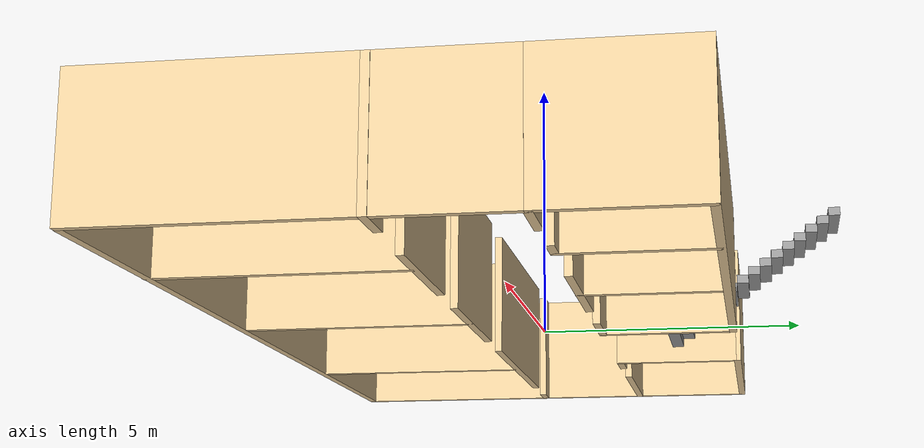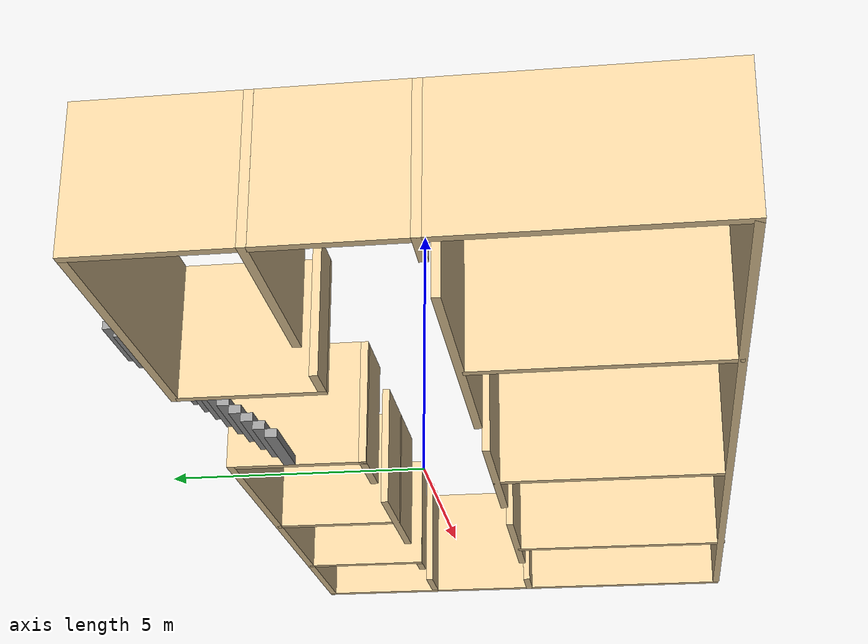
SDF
<?xml version='1.0'?>
<sdf version='1.7'>
  <model name='neworld'>
    <pose>-0.053654 -0.040886 0 0 -0 0</pose>
    <link name='Stairs_0'>
      <visual name='Stairs_0_Visual_0'>
        <pose>-1.36439 2.57287 0.083333 0 -0 -3.14159</pose>
        <geometry>
          <box>
            <size>1.63239 0.233333 0.166667</size>
          </box>
        </geometry>
        <material>
          <script>
            <uri>file://media/materials/scripts/gazebo.material</uri>
            <name>Gazebo/Grey</name>
          </script>
          <ambient>1 1 1 1</ambient>
        </material>
        <meta>
          <layer>0</layer>
        </meta>
      </visual>
      <collision name='Stairs_0_Collision_0'>
        <geometry>
          <box>
            <size>1.63239 0.233333 0.166667</size>
          </box>
        </geometry>
        <pose>-1.36439 2.57287 0.083333 0 -0 -3.14159</pose>
      </collision>
      <visual name='Stairs_0_Visual_1'>
        <pose>-1.36439 2.80621 0.25 0 -0 -3.14159</pose>
        <geometry>
          <box>
            <size>1.63239 0.233333 0.166667</size>
          </box>
        </geometry>
        <material>
          <script>
            <uri>file://media/materials/scripts/gazebo.material</uri>
            <name>Gazebo/Grey</name>
          </script>
          <ambient>1 1 1 1</ambient>
        </material>
        <meta>
          <layer>0</layer>
        </meta>
      </visual>
      <collision name='Stairs_0_Collision_1'>
        <geometry>
          <box>
            <size>1.63239 0.233333 0.166667</size>
          </box>
        </geometry>
        <pose>-1.36439 2.80621 0.25 0 -0 -3.14159</pose>
      </collision>
      <visual name='Stairs_0_Visual_2'>
        <pose>-1.36439 3.03954 0.416667 0 -0 -3.14159</pose>
        <geometry>
          <box>
            <size>1.63239 0.233333 0.166667</size>
          </box>
        </geometry>
        <material>
          <script>
            <uri>file://media/materials/scripts/gazebo.material</uri>
            <name>Gazebo/Grey</name>
          </script>
          <ambient>1 1 1 1</ambient>
        </material>
        <meta>
          <layer>0</layer>
        </meta>
      </visual>
      <collision name='Stairs_0_Collision_2'>
        <geometry>
          <box>
            <size>1.63239 0.233333 0.166667</size>
          </box>
        </geometry>
        <pose>-1.36439 3.03954 0.416667 0 -0 -3.14159</pose>
      </collision>
      <visual name='Stairs_0_Visual_3'>
        <pose>-1.36439 3.27287 0.583333 0 -0 -3.14159</pose>
        <geometry>
          <box>
            <size>1.63239 0.233333 0.166667</size>
          </box>
        </geometry>
        <material>
          <script>
            <uri>file://media/materials/scripts/gazebo.material</uri>
            <name>Gazebo/Grey</name>
          </script>
          <ambient>1 1 1 1</ambient>
        </material>
        <meta>
          <layer>0</layer>
        </meta>
      </visual>
      <collision name='Stairs_0_Collision_3'>
        <geometry>
          <box>
            <size>1.63239 0.233333 0.166667</size>
          </box>
        </geometry>
        <pose>-1.36439 3.27287 0.583333 0 -0 -3.14159</pose>
      </collision>
      <visual name='Stairs_0_Visual_4'>
        <pose>-1.36439 3.50621 0.75 0 -0 -3.14159</pose>
        <geometry>
          <box>
            <size>1.63239 0.233333 0.166667</size>
          </box>
        </geometry>
        <material>
          <script>
            <uri>file://media/materials/scripts/gazebo.material</uri>
            <name>Gazebo/Grey</name>
          </script>
          <ambient>1 1 1 1</ambient>
        </material>
        <meta>
          <layer>0</layer>
        </meta>
      </visual>
      <collision name='Stairs_0_Collision_4'>
        <geometry>
          <box>
            <size>1.63239 0.233333 0.166667</size>
          </box>
        </geometry>
        <pose>-1.36439 3.50621 0.75 0 -0 -3.14159</pose>
      </collision>
      <visual name='Stairs_0_Visual_5'>
        <pose>-1.36439 3.73954 0.916667 0 -0 -3.14159</pose>
        <geometry>
          <box>
            <size>1.63239 0.233333 0.166667</size>
          </box>
        </geometry>
        <material>
          <script>
            <uri>file://media/materials/scripts/gazebo.material</uri>
            <name>Gazebo/Grey</name>
          </script>
          <ambient>1 1 1 1</ambient>
        </material>
        <meta>
          <layer>0</layer>
        </meta>
      </visual>
      <collision name='Stairs_0_Collision_5'>
        <geometry>
          <box>
            <size>1.63239 0.233333 0.166667</size>
          </box>
        </geometry>
        <pose>-1.36439 3.73954 0.916667 0 -0 -3.14159</pose>
      </collision>
      <visual name='Stairs_0_Visual_6'>
        <pose>-1.36439 3.97287 1.08333 0 -0 -3.14159</pose>
        <geometry>
          <box>
            <size>1.63239 0.233333 0.166667</size>
          </box>
        </geometry>
        <material>
          <script>
            <uri>file://media/materials/scripts/gazebo.material</uri>
            <name>Gazebo/Grey</name>
          </script>
          <ambient>1 1 1 1</ambient>
        </material>
        <meta>
          <layer>0</layer>
        </meta>
      </visual>
      <collision name='Stairs_0_Collision_6'>
        <geometry>
          <box>
            <size>1.63239 0.233333 0.166667</size>
          </box>
        </geometry>
        <pose>-1.36439 3.97287 1.08333 0 -0 -3.14159</pose>
      </collision>
      <visual name='Stairs_0_Visual_7'>
        <pose>-1.36439 4.20621 1.25 0 -0 -3.14159</pose>
        <geometry>
          <box>
            <size>1.63239 0.233333 0.166667</size>
          </box>
        </geometry>
        <material>
          <script>
            <uri>file://media/materials/scripts/gazebo.material</uri>
            <name>Gazebo/Grey</name>
          </script>
          <ambient>1 1 1 1</ambient>
        </material>
        <meta>
          <layer>0</layer>
        </meta>
      </visual>
      <collision name='Stairs_0_Collision_7'>
        <geometry>
          <box>
            <size>1.63239 0.233333 0.166667</size>
          </box>
        </geometry>
        <pose>-1.36439 4.20621 1.25 0 -0 -3.14159</pose>
      </collision>
      <visual name='Stairs_0_Visual_8'>
        <pose>-1.36439 4.43954 1.41667 0 -0 -3.14159</pose>
        <geometry>
          <box>
            <size>1.63239 0.233333 0.166667</size>
          </box>
        </geometry>
        <material>
          <script>
            <uri>file://media/materials/scripts/gazebo.material</uri>
            <name>Gazebo/Grey</name>
          </script>
          <ambient>1 1 1 1</ambient>
        </material>
        <meta>
          <layer>0</layer>
        </meta>
      </visual>
      <collision name='Stairs_0_Collision_8'>
        <geometry>
          <box>
            <size>1.63239 0.233333 0.166667</size>
          </box>
        </geometry>
        <pose>-1.36439 4.43954 1.41667 0 -0 -3.14159</pose>
      </collision>
      <visual name='Stairs_0_Visual_9'>
        <pose>-1.36439 4.67287 1.58333 0 -0 -3.14159</pose>
        <geometry>
          <box>
            <size>1.63239 0.233333 0.166667</size>
          </box>
        </geometry>
        <material>
          <script>
            <uri>file://media/materials/scripts/gazebo.material</uri>
            <name>Gazebo/Grey</name>
          </script>
          <ambient>1 1 1 1</ambient>
        </material>
        <meta>
          <layer>0</layer>
        </meta>
      </visual>
      <collision name='Stairs_0_Collision_9'>
        <geometry>
          <box>
            <size>1.63239 0.233333 0.166667</size>
          </box>
        </geometry>
        <pose>-1.36439 4.67287 1.58333 0 -0 -3.14159</pose>
      </collision>
      <visual name='Stairs_0_Visual_10'>
        <pose>-1.36439 4.90621 1.75 0 -0 -3.14159</pose>
        <geometry>
          <box>
            <size>1.63239 0.233333 0.166667</size>
          </box>
        </geometry>
        <material>
          <script>
            <uri>file://media/materials/scripts/gazebo.material</uri>
            <name>Gazebo/Grey</name>
          </script>
          <ambient>1 1 1 1</ambient>
        </material>
        <meta>
          <layer>0</layer>
        </meta>
      </visual>
      <collision name='Stairs_0_Collision_10'>
        <geometry>
          <box>
            <size>1.63239 0.233333 0.166667</size>
          </box>
        </geometry>
        <pose>-1.36439 4.90621 1.75 0 -0 -3.14159</pose>
      </collision>
      <visual name='Stairs_0_Visual_11'>
        <pose>-1.36439 5.13954 1.91667 0 -0 -3.14159</pose>
        <geometry>
          <box>
            <size>1.63239 0.233333 0.166667</size>
          </box>
        </geometry>
        <material>
          <script>
            <uri>file://media/materials/scripts/gazebo.material</uri>
            <name>Gazebo/Grey</name>
          </script>
          <ambient>1 1 1 1</ambient>
        </material>
        <meta>
          <layer>0</layer>
        </meta>
      </visual>
      <collision name='Stairs_0_Collision_11'>
        <geometry>
          <box>
            <size>1.63239 0.233333 0.166667</size>
          </box>
        </geometry>
        <pose>-1.36439 5.13954 1.91667 0 -0 -3.14159</pose>
      </collision>
      <visual name='Stairs_0_Visual_12'>
        <pose>-1.36439 5.37287 2.08333 0 -0 -3.14159</pose>
        <geometry>
          <box>
            <size>1.63239 0.233333 0.166667</size>
          </box>
        </geometry>
        <material>
          <script>
            <uri>file://media/materials/scripts/gazebo.material</uri>
            <name>Gazebo/Grey</name>
          </script>
          <ambient>1 1 1 1</ambient>
        </material>
        <meta>
          <layer>0</layer>
        </meta>
      </visual>
      <collision name='Stairs_0_Collision_12'>
        <geometry>
          <box>
            <size>1.63239 0.233333 0.166667</size>
          </box>
        </geometry>
        <pose>-1.36439 5.37287 2.08333 0 -0 -3.14159</pose>
      </collision>
      <visual name='Stairs_0_Visual_13'>
        <pose>-1.36439 5.60621 2.25 0 -0 -3.14159</pose>
        <geometry>
          <box>
            <size>1.63239 0.233333 0.166667</size>
          </box>
        </geometry>
        <material>
          <script>
            <uri>file://media/materials/scripts/gazebo.material</uri>
            <name>Gazebo/Grey</name>
          </script>
          <ambient>1 1 1 1</ambient>
        </material>
        <meta>
          <layer>0</layer>
        </meta>
      </visual>
      <collision name='Stairs_0_Collision_13'>
        <geometry>
          <box>
            <size>1.63239 0.233333 0.166667</size>
          </box>
        </geometry>
        <pose>-1.36439 5.60621 2.25 0 -0 -3.14159</pose>
      </collision>
      <visual name='Stairs_0_Visual_14'>
        <pose>-1.36439 5.83954 2.41667 0 -0 -3.14159</pose>
        <geometry>
          <box>
            <size>1.63239 0.233333 0.166667</size>
          </box>
        </geometry>
        <material>
          <script>
            <uri>file://media/materials/scripts/gazebo.material</uri>
            <name>Gazebo/Grey</name>
          </script>
          <ambient>1 1 1 1</ambient>
        </material>
        <meta>
          <layer>0</layer>
        </meta>
      </visual>
      <collision name='Stairs_0_Collision_14'>
        <geometry>
          <box>
            <size>1.63239 0.233333 0.166667</size>
          </box>
        </geometry>
        <pose>-1.36439 5.83954 2.41667 0 -0 -3.14159</pose>
      </collision>
    </link>
    <link name='Wall_0'>
      <collision name='Wall_0_Collision'>
        <geometry>
          <box>
            <size>2.3 0.15 2.5</size>
          </box>
        </geometry>
        <pose>0 0 1.25 0 -0 0</pose>
      </collision>
      <visual name='Wall_0_Visual'>
        <pose>0 0 1.25 0 -0 0</pose>
        <geometry>
          <box>
            <size>2.3 0.15 2.5</size>
          </box>
        </geometry>
        <material>
          <script>
            <uri>file://media/materials/scripts/gazebo.material</uri>
            <name>Gazebo/Grey</name>
          </script>
          <ambient>0.921569 0.807843 0.615686 1</ambient>
        </material>
        <meta>
          <layer>0</layer>
        </meta>
      </visual>
      <pose>-9.86635 -0.044114 0 0 -0 -1.5708</pose>
    </link>
    <link name='Wall_10'>
      <collision name='Wall_10_Collision'>
        <geometry>
          <box>
            <size>0.75 0.15 2.5</size>
          </box>
        </geometry>
        <pose>0 0 1.25 0 -0 0</pose>
      </collision>
      <visual name='Wall_10_Visual'>
        <pose>0 0 1.25 0 -0 0</pose>
        <geometry>
          <box>
            <size>0.75 0.15 2.5</size>
          </box>
        </geometry>
        <material>
          <script>
            <uri>file://media/materials/scripts/gazebo.material</uri>
            <name>Gazebo/Grey</name>
          </script>
          <ambient>0.921569 0.807843 0.615686 1</ambient>
        </material>
        <meta>
          <layer>0</layer>
        </meta>
      </visual>
      <pose>-4.73147 1.16099 0 0 -0 0</pose>
    </link>
    <link name='Wall_12'>
      <collision name='Wall_12_Collision'>
        <geometry>
          <box>
            <size>2.65 0.15 2.5</size>
          </box>
        </geometry>
        <pose>0 0 1.25 0 -0 0</pose>
      </collision>
      <visual name='Wall_12_Visual'>
        <pose>0 0 1.25 0 -0 0</pose>
        <geometry>
          <box>
            <size>2.65 0.15 2.5</size>
          </box>
        </geometry>
        <material>
          <script>
            <uri>file://media/materials/scripts/gazebo.material</uri>
            <name>Gazebo/Grey</name>
          </script>
          <ambient>0.921569 0.807843 0.615686 1</ambient>
        </material>
        <meta>
          <layer>0</layer>
        </meta>
      </visual>
      <pose>-4.28342 2.41113 0 0 -0 1.5708</pose>
    </link>
    <link name='Wall_16'>
      <collision name='Wall_16_Collision'>
        <geometry>
          <box>
            <size>1.4 0.15 2.5</size>
          </box>
        </geometry>
        <pose>0 0 1.25 0 -0 0</pose>
      </collision>
      <visual name='Wall_16_Visual'>
        <pose>0 0 1.25 0 -0 0</pose>
        <geometry>
          <box>
            <size>1.4 0.15 2.5</size>
          </box>
        </geometry>
        <material>
          <script>
            <uri>file://media/materials/scripts/gazebo.material</uri>
            <name>Gazebo/Grey</name>
          </script>
          <ambient>0.921569 0.807843 0.615686 1</ambient>
        </material>
        <meta>
          <layer>0</layer>
        </meta>
      </visual>
      <pose>0.139446 1.15301 0 0 -0 0</pose>
    </link>
    <link name='Wall_18'>
      <collision name='Wall_18_Collision'>
        <geometry>
          <box>
            <size>3.3 0.15 2.5</size>
          </box>
        </geometry>
        <pose>0 0 1.25 0 -0 0</pose>
      </collision>
      <visual name='Wall_18_Visual'>
        <pose>0 0 1.25 0 -0 0</pose>
        <geometry>
          <box>
            <size>3.3 0.15 2.5</size>
          </box>
        </geometry>
        <material>
          <script>
            <uri>file://media/materials/scripts/gazebo.material</uri>
            <name>Gazebo/Grey</name>
          </script>
          <ambient>0.921569 0.807843 0.615686 1</ambient>
        </material>
        <meta>
          <layer>0</layer>
        </meta>
      </visual>
      <pose>3.73702 1.16057 0 0 -0 0</pose>
    </link>
    <link name='Wall_2'>
      <collision name='Wall_2_Collision'>
        <geometry>
          <box>
            <size>3.6 0.15 2.5</size>
          </box>
        </geometry>
        <pose>0 0 1.25 0 -0 0</pose>
      </collision>
      <visual name='Wall_2_Visual'>
        <pose>0 0 1.25 0 -0 0</pose>
        <geometry>
          <box>
            <size>3.6 0.15 2.5</size>
          </box>
        </geometry>
        <material>
          <script>
            <uri>file://media/materials/scripts/gazebo.material</uri>
            <name>Gazebo/Grey</name>
          </script>
          <ambient>0.921569 0.807843 0.615686 1</ambient>
        </material>
        <meta>
          <layer>0</layer>
        </meta>
      </visual>
      <pose>-8.14217 1.16283 0 0 -0 0</pose>
    </link>
    <link name='Wall_20'>
      <collision name='Wall_20_Collision'>
        <geometry>
          <box>
            <size>0.7 0.15 2.5</size>
          </box>
        </geometry>
        <pose>0 0 1.25 0 -0 0</pose>
      </collision>
      <visual name='Wall_20_Visual'>
        <pose>0 0 1.25 0 -0 0</pose>
        <geometry>
          <box>
            <size>0.7 0.15 2.5</size>
          </box>
        </geometry>
        <material>
          <script>
            <uri>file://media/materials/scripts/gazebo.material</uri>
            <name>Gazebo/Grey</name>
          </script>
          <ambient>0.921569 0.807843 0.615686 1</ambient>
        </material>
        <meta>
          <layer>0</layer>
        </meta>
      </visual>
      <pose>7.3554 1.15508 0 0 -0 0</pose>
    </link>
    <link name='Wall_22'>
      <collision name='Wall_22_Collision'>
        <geometry>
          <box>
            <size>1.25 0.15 2.5</size>
          </box>
        </geometry>
        <pose>0 0 1.25 0 -0 0</pose>
      </collision>
      <visual name='Wall_22_Visual'>
        <pose>0 0 1.25 0 -0 0</pose>
        <geometry>
          <box>
            <size>1.25 0.15 2.5</size>
          </box>
        </geometry>
        <material>
          <script>
            <uri>file://media/materials/scripts/gazebo.material</uri>
            <name>Gazebo/Grey</name>
          </script>
          <ambient>0.921569 0.807843 0.615686 1</ambient>
        </material>
        <meta>
          <layer>0</layer>
        </meta>
      </visual>
      <pose>9.29875 1.13168 0 0 -0 0</pose>
    </link>
    <link name='Wall_27'>
      <collision name='Wall_27_Collision'>
        <geometry>
          <box>
            <size>3.3 0.15 2.5</size>
          </box>
        </geometry>
        <pose>0 0 1.25 0 -0 0</pose>
      </collision>
      <visual name='Wall_27_Visual'>
        <pose>0 0 1.25 0 -0 0</pose>
        <geometry>
          <box>
            <size>3.3 0.15 2.5</size>
          </box>
        </geometry>
        <material>
          <script>
            <uri>file://media/materials/scripts/gazebo.material</uri>
            <name>Gazebo/Grey</name>
          </script>
          <ambient>0.921569 0.807843 0.615686 1</ambient>
        </material>
        <meta>
          <layer>0</layer>
        </meta>
      </visual>
      <pose>5.73822 -1.26778 0 0 -0 0</pose>
    </link>
    <link name='Wall_35'>
      <collision name='Wall_35_Collision'>
        <geometry>
          <box>
            <size>4.75 0.15 2.5</size>
          </box>
        </geometry>
        <pose>0 0 1.25 0 -0 0</pose>
      </collision>
      <visual name='Wall_35_Visual'>
        <pose>0 0 1.25 0 -0 0</pose>
        <geometry>
          <box>
            <size>4.75 0.15 2.5</size>
          </box>
        </geometry>
        <material>
          <script>
            <uri>file://media/materials/scripts/gazebo.material</uri>
            <name>Gazebo/Grey</name>
          </script>
          <ambient>0.921569 0.807843 0.615686 1</ambient>
        </material>
        <meta>
          <layer>0</layer>
        </meta>
      </visual>
      <pose>-9.86642 -3.56717 0 0 -0 -1.5708</pose>
    </link>
    <link name='Wall_39'>
      <collision name='Wall_39_Collision'>
        <geometry>
          <box>
            <size>2.75 0.15 2.5</size>
          </box>
        </geometry>
        <pose>0 0 1.25 0 -0 0</pose>
      </collision>
      <visual name='Wall_39_Visual'>
        <pose>0 0 1.25 0 -0 0</pose>
        <geometry>
          <box>
            <size>2.75 0.15 2.5</size>
          </box>
        </geometry>
        <material>
          <script>
            <uri>file://media/materials/scripts/gazebo.material</uri>
            <name>Gazebo/Grey</name>
          </script>
          <ambient>0.921569 0.807843 0.615686 1</ambient>
        </material>
        <meta>
          <layer>0</layer>
        </meta>
      </visual>
      <pose>-9.86717 2.46283 0 0 -0 1.5708</pose>
    </link>
    <link name='Wall_4'>
      <collision name='Wall_4_Collision'>
        <geometry>
          <box>
            <size>0.77 0.15 2.5</size>
          </box>
        </geometry>
        <pose>0 0 1.25 0 -0 0</pose>
      </collision>
      <visual name='Wall_4_Visual'>
        <pose>0 0 1.25 0 -0 0</pose>
        <geometry>
          <box>
            <size>0.77 0.15 2.5</size>
          </box>
        </geometry>
        <material>
          <script>
            <uri>file://media/materials/scripts/gazebo.material</uri>
            <name>Gazebo/Grey</name>
          </script>
          <ambient>0.921569 0.807843 0.615686 1</ambient>
        </material>
        <meta>
          <layer>0</layer>
        </meta>
      </visual>
      <pose>-9.55642 -1.26717 0 0 -0 0</pose>
    </link>
    <link name='Wall_40'>
      <collision name='Wall_40_Collision'>
        <geometry>
          <box>
            <size>5.73 0.15 2.5</size>
          </box>
        </geometry>
        <pose>0 0 1.25 0 -0 0</pose>
      </collision>
      <visual name='Wall_40_Visual'>
        <pose>0 0 1.25 0 -0 0</pose>
        <geometry>
          <box>
            <size>5.73 0.15 2.5</size>
          </box>
        </geometry>
        <material>
          <script>
            <uri>file://media/materials/scripts/gazebo.material</uri>
            <name>Gazebo/Grey</name>
          </script>
          <ambient>0.921569 0.807843 0.615686 1</ambient>
        </material>
        <meta>
          <layer>0</layer>
        </meta>
      </visual>
      <pose>-7.07717 3.76283 0 0 -0 0</pose>
    </link>
    <link name='Wall_46'>
      <collision name='Wall_46_Collision'>
        <geometry>
          <box>
            <size>2.75 0.15 2.5</size>
          </box>
        </geometry>
        <pose>0 0 1.25 0 -0 0</pose>
      </collision>
      <visual name='Wall_46_Visual'>
        <pose>0 0 1.25 0 -0 0</pose>
        <geometry>
          <box>
            <size>2.75 0.15 2.5</size>
          </box>
        </geometry>
        <material>
          <script>
            <uri>file://media/materials/scripts/gazebo.material</uri>
            <name>Gazebo/Grey</name>
          </script>
          <ambient>0.921569 0.807843 0.615686 1</ambient>
        </material>
        <meta>
          <layer>0</layer>
        </meta>
      </visual>
      <pose>-0.485554 2.45301 0 0 -0 1.5708</pose>
    </link>
    <link name='Wall_47'>
      <collision name='Wall_47_Collision'>
        <geometry>
          <box>
            <size>10.5 0.15 2.5</size>
          </box>
        </geometry>
        <pose>0 0 1.25 0 -0 0</pose>
      </collision>
      <visual name='Wall_47_Visual'>
        <pose>0 0 1.25 0 -0 0</pose>
        <geometry>
          <box>
            <size>10.5 0.15 2.5</size>
          </box>
        </geometry>
        <material>
          <script>
            <uri>file://media/materials/scripts/gazebo.material</uri>
            <name>Gazebo/Grey</name>
          </script>
          <ambient>0.921569 0.807843 0.615686 1</ambient>
        </material>
        <meta>
          <layer>0</layer>
        </meta>
      </visual>
      <pose>4.68945 3.75301 0 0 -0 0</pose>
    </link>
    <link name='Wall_48'>
      <collision name='Wall_48_Collision'>
        <geometry>
          <box>
            <size>2.75 0.15 2.5</size>
          </box>
        </geometry>
        <pose>0 0 1.25 0 -0 0</pose>
      </collision>
      <visual name='Wall_48_Visual'>
        <pose>0 0 1.25 0 -0 0</pose>
        <geometry>
          <box>
            <size>2.75 0.15 2.5</size>
          </box>
        </geometry>
        <material>
          <script>
            <uri>file://media/materials/scripts/gazebo.material</uri>
            <name>Gazebo/Grey</name>
          </script>
          <ambient>0.921569 0.807843 0.615686 1</ambient>
        </material>
        <meta>
          <layer>0</layer>
        </meta>
      </visual>
      <pose>9.86445 2.45301 0 0 -0 -1.5708</pose>
    </link>
    <link name='Wall_50'>
      <collision name='Wall_50_Collision'>
        <geometry>
          <box>
            <size>2.25 0.15 2.5</size>
          </box>
        </geometry>
        <pose>0 0 1.25 0 -0 0</pose>
      </collision>
      <visual name='Wall_50_Visual'>
        <pose>0 0 1.25 0 -0 0</pose>
        <geometry>
          <box>
            <size>2.25 0.15 2.5</size>
          </box>
        </geometry>
        <material>
          <script>
            <uri>file://media/materials/scripts/gazebo.material</uri>
            <name>Gazebo/Grey</name>
          </script>
          <ambient>0.921569 0.807843 0.615686 1</ambient>
        </material>
        <meta>
          <layer>0</layer>
        </meta>
      </visual>
      <pose>9.86509 -0.040594 0 0 -0 -1.5708</pose>
    </link>
    <link name='Wall_52'>
      <collision name='Wall_52_Collision'>
        <geometry>
          <box>
            <size>1 0.15 2.5</size>
          </box>
        </geometry>
        <pose>0 0 1.25 0 -0 0</pose>
      </collision>
      <visual name='Wall_52_Visual'>
        <pose>0 0 1.25 0 -0 0</pose>
        <geometry>
          <box>
            <size>1 0.15 2.5</size>
          </box>
        </geometry>
        <material>
          <script>
            <uri>file://media/materials/scripts/gazebo.material</uri>
            <name>Gazebo/Grey</name>
          </script>
          <ambient>0.921569 0.807843 0.615686 1</ambient>
        </material>
        <meta>
          <layer>0</layer>
        </meta>
      </visual>
      <pose>9.44217 -1.24278 0 0 -0 0</pose>
    </link>
    <link name='Wall_54'>
      <collision name='Wall_54_Collision'>
        <geometry>
          <box>
            <size>4.63 0.15 2.5</size>
          </box>
        </geometry>
        <pose>0 0 1.25 0 -0 0</pose>
      </collision>
      <visual name='Wall_54_Visual'>
        <pose>0 0 1.25 0 -0 0</pose>
        <geometry>
          <box>
            <size>4.63 0.15 2.5</size>
          </box>
        </geometry>
        <material>
          <script>
            <uri>file://media/materials/scripts/gazebo.material</uri>
            <name>Gazebo/Grey</name>
          </script>
          <ambient>0.921569 0.807843 0.615686 1</ambient>
        </material>
        <meta>
          <layer>0</layer>
        </meta>
      </visual>
      <pose>9.86588 -3.61251 0 0 -0 -1.5708</pose>
    </link>
    <link name='Wall_56'>
      <collision name='Wall_56_Collision'>
        <geometry>
          <box>
            <size>19.75 0.15 2.5</size>
          </box>
        </geometry>
        <pose>0 0 1.25 0 -0 0</pose>
      </collision>
      <visual name='Wall_56_Visual'>
        <pose>0 0 1.25 0 -0 0</pose>
        <geometry>
          <box>
            <size>19.75 0.15 2.5</size>
          </box>
        </geometry>
        <material>
          <script>
            <uri>file://media/materials/scripts/gazebo.material</uri>
            <name>Gazebo/Grey</name>
          </script>
          <ambient>0.921569 0.807843 0.615686 1</ambient>
        </material>
        <meta>
          <layer>0</layer>
        </meta>
      </visual>
      <pose>-0.066423 -5.86717 0 0 -0 0</pose>
    </link>
    <link name='Wall_58'>
      <collision name='Wall_58_Collision'>
        <geometry>
          <box>
            <size>2.7 0.15 2.5</size>
          </box>
        </geometry>
        <pose>0 0 1.25 0 -0 0</pose>
      </collision>
      <visual name='Wall_58_Visual'>
        <pose>0 0 1.25 0 -0 0</pose>
        <geometry>
          <box>
            <size>2.7 0.15 2.5</size>
          </box>
        </geometry>
        <material>
          <script>
            <uri>file://media/materials/scripts/gazebo.material</uri>
            <name>Gazebo/Grey</name>
          </script>
          <ambient>0.921569 0.807843 0.615686 1</ambient>
        </material>
        <meta>
          <layer>0</layer>
        </meta>
      </visual>
      <pose>3.66612 2.4313 0 0 -0 -1.5708</pose>
    </link>
    <link name='Wall_6'>
      <collision name='Wall_6_Collision'>
        <geometry>
          <box>
            <size>3.75 0.15 2.5</size>
          </box>
        </geometry>
        <pose>0 0 1.25 0 -0 0</pose>
      </collision>
      <visual name='Wall_6_Visual'>
        <pose>0 0 1.25 0 -0 0</pose>
        <geometry>
          <box>
            <size>3.75 0.15 2.5</size>
          </box>
        </geometry>
        <material>
          <script>
            <uri>file://media/materials/scripts/gazebo.material</uri>
            <name>Gazebo/Grey</name>
          </script>
          <ambient>0.921569 0.807843 0.615686 1</ambient>
        </material>
        <meta>
          <layer>0</layer>
        </meta>
      </visual>
      <pose>0.968362 -1.27372 0 0 -0 0</pose>
    </link>
    <link name='Wall_61'>
      <collision name='Wall_61_Collision'>
        <geometry>
          <box>
            <size>2.7 0.15 2.5</size>
          </box>
        </geometry>
        <pose>0 0 1.25 0 -0 0</pose>
      </collision>
      <visual name='Wall_61_Visual'>
        <pose>0 0 1.25 0 -0 0</pose>
        <geometry>
          <box>
            <size>2.7 0.15 2.5</size>
          </box>
        </geometry>
        <material>
          <script>
            <uri>file://media/materials/scripts/gazebo.material</uri>
            <name>Gazebo/Grey</name>
          </script>
          <ambient>0.921569 0.807843 0.615686 1</ambient>
        </material>
        <meta>
          <layer>0</layer>
        </meta>
      </visual>
      <pose>7.07297 2.43448 0 0 -0 -1.5708</pose>
    </link>
    <link name='Wall_63'>
      <collision name='Wall_63_Collision'>
        <geometry>
          <box>
            <size>4.6 0.15 2.5</size>
          </box>
        </geometry>
        <pose>0 0 1.25 0 -0 0</pose>
      </collision>
      <visual name='Wall_63_Visual'>
        <pose>0 0 1.25 0 -0 0</pose>
        <geometry>
          <box>
            <size>4.6 0.15 2.5</size>
          </box>
        </geometry>
        <material>
          <script>
            <uri>file://media/materials/scripts/gazebo.material</uri>
            <name>Gazebo/Grey</name>
          </script>
          <ambient>0.921569 0.807843 0.615686 1</ambient>
        </material>
        <meta>
          <layer>0</layer>
        </meta>
      </visual>
      <pose>-4.88267 -3.60195 0 0 -0 -1.5708</pose>
    </link>
    <link name='Wall_65'>
      <collision name='Wall_65_Collision'>
        <geometry>
          <box>
            <size>4.6 0.15 2.5</size>
          </box>
        </geometry>
        <pose>0 0 1.25 0 -0 0</pose>
      </collision>
      <visual name='Wall_65_Visual'>
        <pose>0 0 1.25 0 -0 0</pose>
        <geometry>
          <box>
            <size>4.6 0.15 2.5</size>
          </box>
        </geometry>
        <material>
          <script>
            <uri>file://media/materials/scripts/gazebo.material</uri>
            <name>Gazebo/Grey</name>
          </script>
          <ambient>0.921569 0.807843 0.615686 1</ambient>
        </material>
        <meta>
          <layer>0</layer>
        </meta>
      </visual>
      <pose>1.11607 -3.51008 0 0 -0 -1.5708</pose>
    </link>
    <link name='Wall_68'>
      <collision name='Wall_68_Collision'>
        <geometry>
          <box>
            <size>4.75 0.15 2.5</size>
          </box>
        </geometry>
        <pose>0 0 1.25 0 -0 0</pose>
      </collision>
      <visual name='Wall_68_Visual'>
        <pose>0 0 1.25 0 -0 0</pose>
        <geometry>
          <box>
            <size>4.75 0.15 2.5</size>
          </box>
        </geometry>
        <material>
          <script>
            <uri>file://media/materials/scripts/gazebo.material</uri>
            <name>Gazebo/Grey</name>
          </script>
          <ambient>0.921569 0.807843 0.615686 1</ambient>
        </material>
        <meta>
          <layer>0</layer>
        </meta>
      </visual>
      <pose>6.21501 -3.58121 0 0 -0 -1.5708</pose>
    </link>
    <link name='Wall_8'>
      <collision name='Wall_8_Collision'>
        <geometry>
          <box>
            <size>5.8 0.15 2.5</size>
          </box>
        </geometry>
        <pose>0 0 1.25 0 -0 0</pose>
      </collision>
      <visual name='Wall_8_Visual'>
        <pose>0 0 1.25 0 -0 0</pose>
        <geometry>
          <box>
            <size>5.8 0.15 2.5</size>
          </box>
        </geometry>
        <material>
          <script>
            <uri>file://media/materials/scripts/gazebo.material</uri>
            <name>Gazebo/Grey</name>
          </script>
          <ambient>0.921569 0.807843 0.615686 1</ambient>
        </material>
        <meta>
          <layer>0</layer>
        </meta>
      </visual>
      <pose>-5.05741 -1.26849 0 0 -0 0</pose>
    </link>
    <static>1</static>
  </model>
</sdf>
